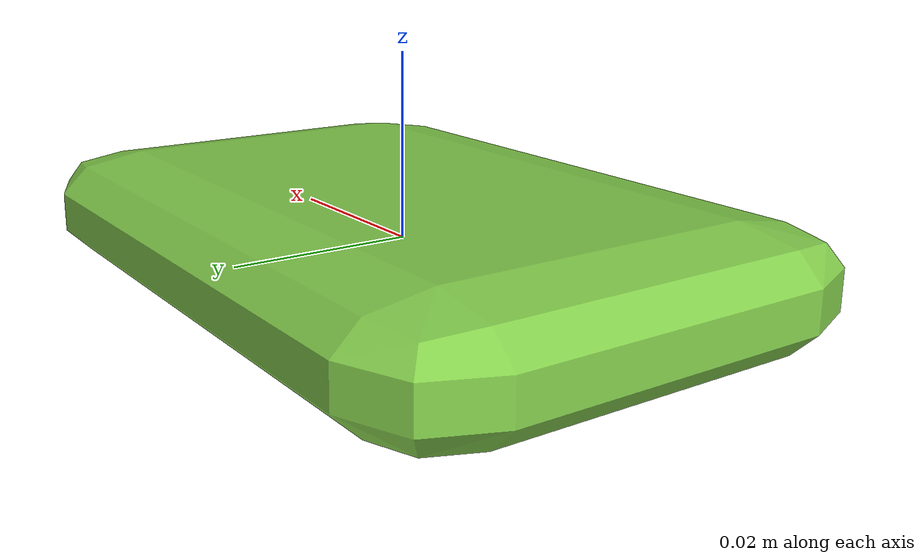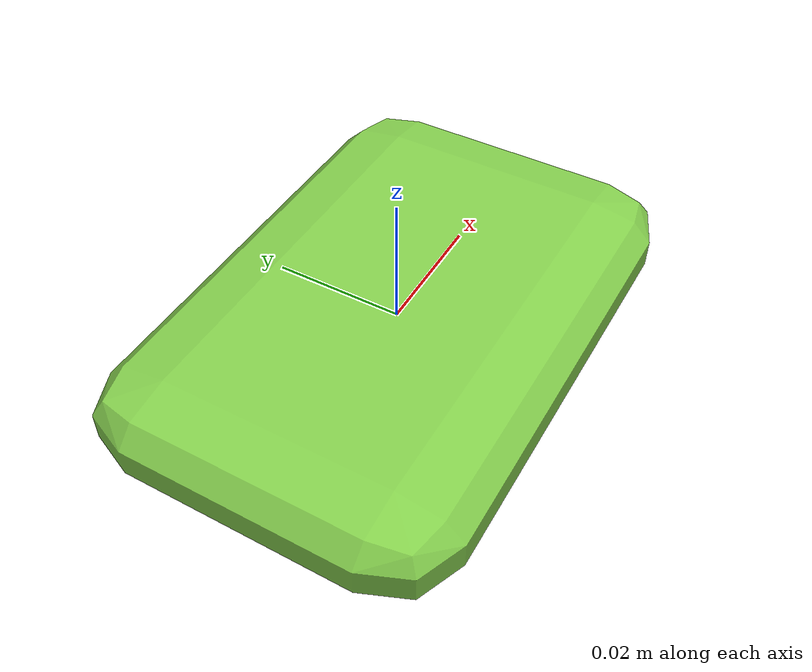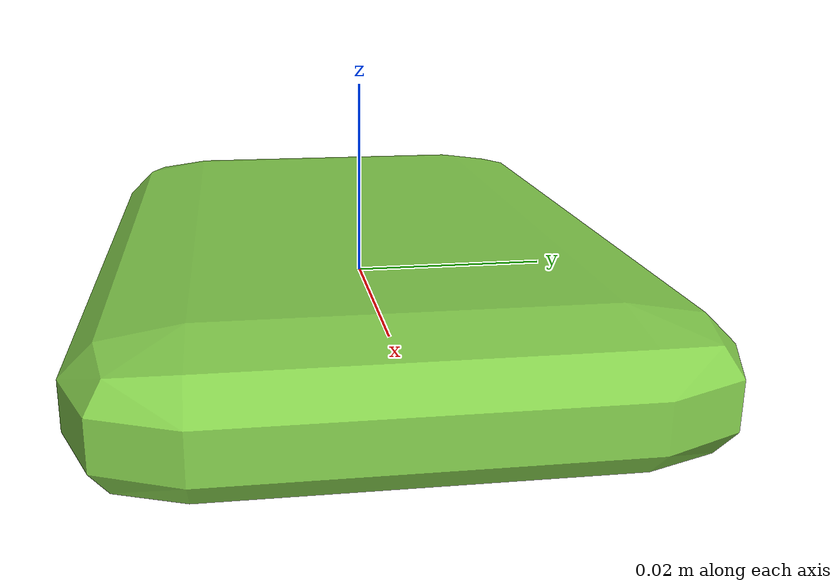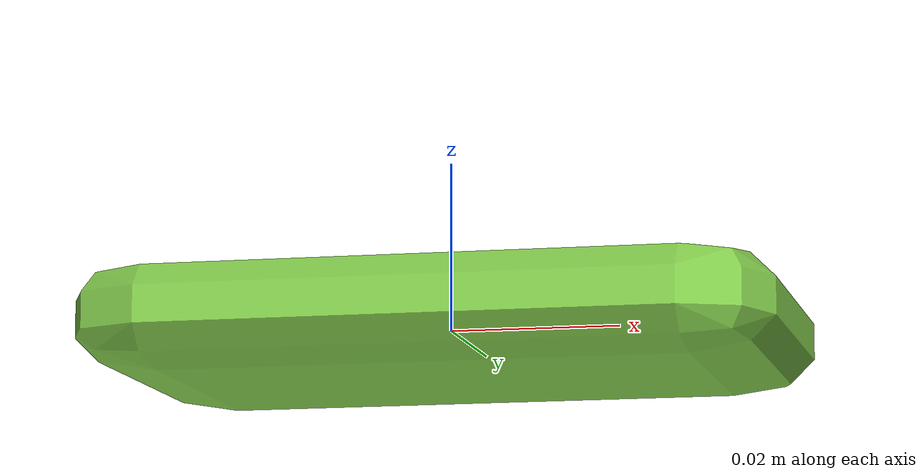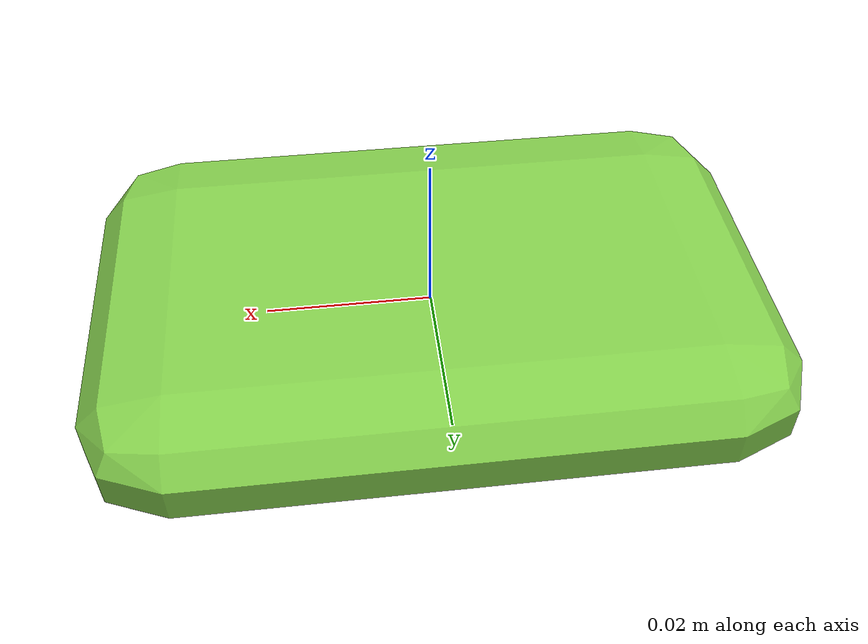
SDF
<?xml version='1.0'?>
<sdf version="1.4">
	<model name="barsoap">
		<static>1</static>
		<link name="link">
			<visual name="mesh">
				<geometry>
					<mesh>
						<uri>model://meshes/barsoap.dae</uri>
					</mesh>
				</geometry>
			</visual>
			<collision name="collider">
				<pose>0 0 0 0 0 0</pose>
				<geometry>
					<box>
						<size>0.081 0.054 0.012</size>
					</box>
				</geometry>
			</collision>
		</link>
	</model>
</sdf>
